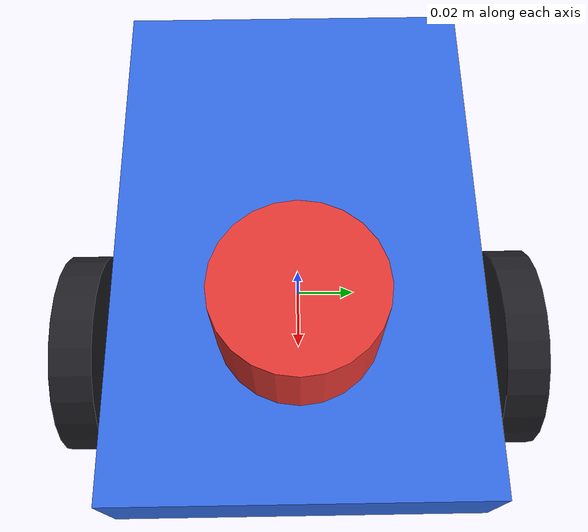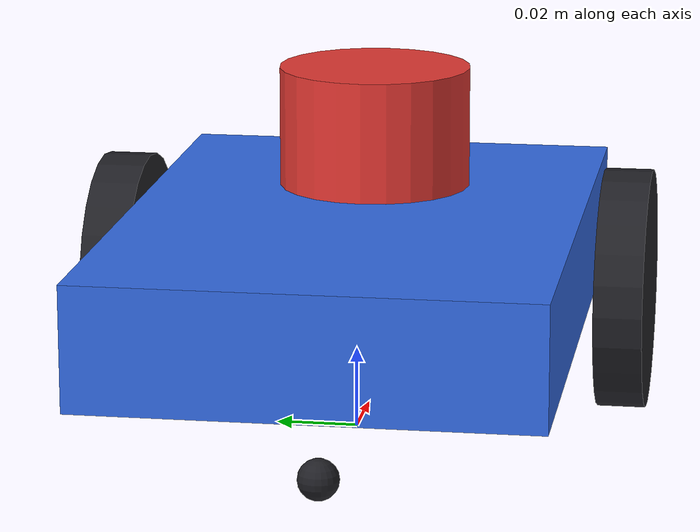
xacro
<?xml version="1.0"?>
<robot xmlns:xacro="http://www.ros.org/wiki/xacro" name="maze_car">

  <xacro:property name="base_len"  value="0.160"/>
  <xacro:property name="base_wid"  value="0.110"/>
  <xacro:property name="base_hgt"  value="0.030"/>
  <xacro:property name="wheel_rad" value="0.030"/>
  <xacro:property name="wheel_wid" value="0.012"/>
  <xacro:property name="wheel_sep" value="0.128"/>
  <xacro:property name="caster_rad" value="0.005"/>
  <!-- wheel axle sits this far below base_link centre. base_footprint and the
       caster are both derived from it - keep them derived, never hardcoded. -->
  <xacro:property name="wheel_dz"   value="-0.010"/>
  <xacro:property name="base_z"     value="${wheel_rad - wheel_dz}"/>
  <xacro:property name="lidar_height" value="0.070"/>

  <material name="blue"><color rgba="0.20 0.42 0.90 1"/></material>
  <material name="dark"><color rgba="0.13 0.13 0.15 1"/></material>
  <material name="red"><color rgba="0.90 0.22 0.20 1"/></material>

  <link name="base_footprint"/>

  <joint name="base_joint" type="fixed">
    <parent link="base_footprint"/>
    <child  link="base_link"/>
    <origin xyz="0 0 ${wheel_rad - wheel_dz}"/>
  </joint>

  <link name="base_link">
    <visual>
      <geometry><box size="${base_len} ${base_wid} ${base_hgt}"/></geometry>
      <material name="blue"/>
    </visual>
    <collision>
      <geometry><box size="${base_len} ${base_wid} ${base_hgt}"/></geometry>
    </collision>
    <inertial>
      <mass value="0.40"/>
      <inertia ixx="4.33e-4" ixy="0" ixz="0" iyy="8.83e-4" iyz="0" izz="1.26e-3"/>
    </inertial>
  </link>

  <xacro:macro name="wheel" params="name y">
    <link name="${name}_wheel">
      <visual>
        <origin rpy="1.5708 0 0"/>
        <geometry><cylinder radius="${wheel_rad}" length="${wheel_wid}"/></geometry>
        <material name="dark"/>
      </visual>
      <collision>
        <origin rpy="1.5708 0 0"/>
        <geometry><cylinder radius="${wheel_rad}" length="${wheel_wid}"/></geometry>
        <surface><friction><ode><mu>1.0</mu><mu2>1.0</mu2></ode></friction></surface>
      </collision>
      <inertial>
        <origin rpy="1.5708 0 0"/>
        <mass value="0.025"/>
        <inertia ixx="5.93e-6" ixy="0" ixz="0" iyy="5.93e-6" iyz="0" izz="1.13e-5"/>
      </inertial>
    </link>
    <joint name="${name}_wheel_joint" type="continuous">
      <parent link="base_link"/>
      <child  link="${name}_wheel"/>
      <origin xyz="0.030 ${y} ${wheel_dz}"/>
      <axis xyz="0 1 0"/>
    </joint>
  </xacro:macro>

  <xacro:wheel name="left"  y="${ wheel_sep/2}"/>
  <xacro:wheel name="right" y="${-wheel_sep/2}"/>

  <link name="caster">
    <visual><geometry><sphere radius="${caster_rad}"/></geometry><material name="dark"/></visual>
    <collision>
      <geometry><sphere radius="${caster_rad}"/></geometry>
      <surface><friction><ode><mu>0.0</mu><mu2>0.0</mu2></ode></friction></surface>
    </collision>
    <inertial>
      <mass value="0.010"/>
      <inertia ixx="5e-7" ixy="0" ixz="0" iyy="5e-7" iyz="0" izz="5e-7"/>
    </inertial>
  </link>
  <joint name="caster_joint" type="fixed">
    <parent link="base_link"/>
    <child  link="caster"/>
    <origin xyz="-0.058 0 ${wheel_dz - wheel_rad + caster_rad}"/>
  </joint>

  <link name="lidar_link">
    <visual><geometry><cylinder radius="0.024" length="0.030"/></geometry><material name="red"/></visual>
    <collision><geometry><cylinder radius="0.024" length="0.030"/></geometry></collision>
    <inertial>
      <mass value="0.060"/>
      <inertia ixx="2.64e-5" ixy="0" ixz="0" iyy="2.64e-5" iyz="0" izz="3.68e-5"/>
    </inertial>
  </link>
  <joint name="lidar_joint" type="fixed">
    <parent link="base_link"/>
    <child  link="lidar_link"/>
    <origin xyz="0.030 0 ${lidar_height - base_z}"/>
  </joint>

  <gazebo reference="lidar_link">
    <sensor name="lidar" type="gpu_lidar">
      <pose>0 0 0 0 0 0</pose>
      <topic>scan</topic>
      <update_rate>10</update_rate>
      <always_on>1</always_on>
      <visualize>true</visualize>
      <gz_frame_id>lidar_link</gz_frame_id>
      <lidar>
        <scan>
          <horizontal>
            <samples>180</samples>
            <resolution>1</resolution>
            <!-- a full turn, open at one end so the first and last ray are not
                 the same ray counted twice -->
            <min_angle>-3.14159</min_angle>
            <max_angle>3.10743</max_angle>
          </horizontal>
        </scan>
        <range><min>0.06</min><max>6.0</max><resolution>0.01</resolution></range>
        <noise><type>gaussian</type><mean>0.0</mean><stddev>0.008</stddev></noise>
      </lidar>
    </sensor>
  </gazebo>

  <gazebo>
    <plugin filename="gz-sim-diff-drive-system" name="gz::sim::systems::DiffDrive">
      <left_joint>left_wheel_joint</left_joint>
      <right_joint>right_wheel_joint</right_joint>
      <wheel_separation>${wheel_sep}</wheel_separation>
      <wheel_radius>${wheel_rad}</wheel_radius>
      <odom_publish_frequency>30</odom_publish_frequency>
      <topic>cmd_vel</topic>
      <odom_topic>odom</odom_topic>
      <tf_topic>tf</tf_topic>
      <frame_id>odom</frame_id>
      <child_frame_id>base_footprint</child_frame_id>
      <max_linear_acceleration>1.5</max_linear_acceleration>
    </plugin>

    <plugin filename="gz-sim-joint-state-publisher-system"
            name="gz::sim::systems::JointStatePublisher">
      <topic>joint_states</topic>
    </plugin>

    <plugin filename="gz-sim-odometry-publisher-system"
            name="gz::sim::systems::OdometryPublisher">
      <odom_topic>ego/true_odom</odom_topic>
      <dimensions>2</dimensions>
      <odom_publish_frequency>30</odom_publish_frequency>
    </plugin>
  </gazebo>
</robot>
